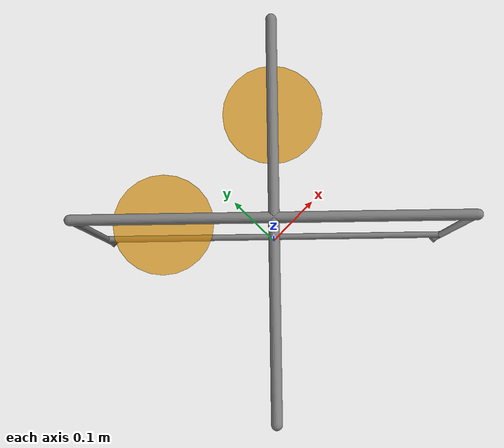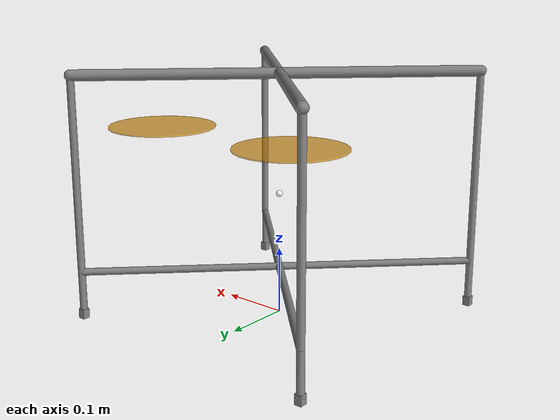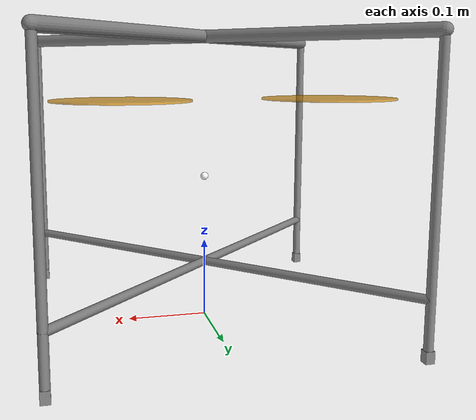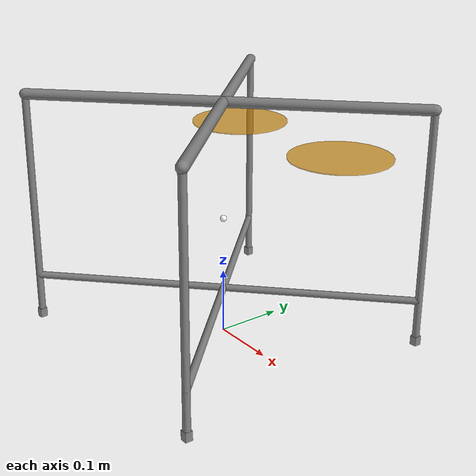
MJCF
<mujoco model="minitrone_430x430x370">
  <compiler angle="radian" coordinate="local" inertiafromgeom="auto" />
  <option gravity="0 0 -9.81" timestep="0.002" />
  <default>
    <geom friction="0.8 0.1 0.1" density="0" />
    <joint damping="0.1" stiffness="0" />
  </default>
  <worldbody>
    <body name="drone_base" pos="0.000000000 0.000000000 0.185000000">
      <freejoint name="root" />
      <!-- All physical mass concentrated at the body-frame origin. -->
      <inertial pos="0.000000000 0.000000000 0.000000000" mass="2.5" diaginertia="0.0670417 0.0670417 0.0770417" />
      <site name="drone_imu" pos="0.000000000 0.000000000 0.000000000" quat="1 0 0 0" rgba="1 1 1 1" />
      <!-- Bottom X-frame pipes -->
      <geom name="xpipe_bottome1" type="capsule" fromto="-0.206249572 -0.206249572 -0.113007850 0.206249572 0.206249572 -0.113007850" size="0.005426622" rgba="0.5 0.5 0.5 1" contype="1" conaffinity="1" group="0" mass="0" />
      <geom name="xpipe_bottome2" type="capsule" fromto="-0.206249572 0.206249572 -0.113007850 0.206249572 -0.206249572 -0.113007850" size="0.005426622" rgba="0.5 0.5 0.5 1" contype="1" conaffinity="1" group="0" mass="0" />
      <!-- Top X-frame pipes -->
      <geom name="xpipe_top1" type="capsule" fromto="-0.206249572 -0.206249572 0.176394928 0.206249572 0.206249572 0.176394928" size="0.008139933" rgba="0.5 0.5 0.5 1" contype="1" conaffinity="1" group="0" mass="0" />
      <geom name="xpipe_top2" type="capsule" fromto="-0.206249572 0.206249572 0.176394928 0.206249572 -0.206249572 0.176394928" size="0.008139933" rgba="0.5 0.5 0.5 1" contype="1" conaffinity="1" group="0" mass="0" />
      <!-- Legs and feet -->
      <geom name="leg1_shaft" type="capsule" fromto="-0.206249572 0.206249572 -0.177800785 -0.206249572 0.206249572 0.176394928" size="0.005426622" contype="1" conaffinity="1" group="0" mass="0" />
      <geom name="leg1_foot" type="box" pos="-0.206249572 0.206249572 -0.177800785" size="0.005426622 0.005426622 0.007199215" contype="1" conaffinity="1" group="0" mass="0" />
      <geom name="leg2_shaft" type="capsule" fromto="0.206249572 0.206249572 -0.177800785 0.206249572 0.206249572 0.176394928" size="0.005426622" contype="1" conaffinity="1" group="0" mass="0" />
      <geom name="leg2_foot" type="box" pos="0.206249572 0.206249572 -0.177800785" size="0.005426622 0.005426622 0.007199215" contype="1" conaffinity="1" group="0" mass="0" />
      <geom name="leg3_shaft" type="capsule" fromto="0.206249572 -0.206249572 -0.177800785 0.206249572 -0.206249572 0.176394928" size="0.005426622" contype="1" conaffinity="1" group="0" mass="0" />
      <geom name="leg3_foot" type="box" pos="0.206249572 -0.206249572 -0.177800785" size="0.005426622 0.005426622 0.007199215" contype="1" conaffinity="1" group="0" mass="0" />
      <geom name="leg4_shaft" type="capsule" fromto="-0.206249572 -0.206249572 -0.177800785 -0.206249572 -0.206249572 0.176394928" size="0.005426622" contype="1" conaffinity="1" group="0" mass="0" />
      <geom name="leg4_foot" type="box" pos="-0.206249572 -0.206249572 -0.177800785" size="0.005426622 0.005426622 0.007199215" contype="1" conaffinity="1" group="0" mass="0" />
      <body name="servo1" pos="0.117913386 0.117913386 0.131765459" quat="0.9238795 0 0 0.3826834">
        <inertial pos="0.000000000 0.000000000 0.000000000" mass="1e-9" diaginertia="1e-12 1e-12 1e-12" />
        <joint name="j_servo1" type="hinge" axis="1 0 0" pos="0.000000000 0.000000000 -0.028796860" limited="true" range="-1.57079632679 1.57079632679" armature="0.005" damping="0.02" />
        <body name="prop1_body" pos="0.000000000 0.000000000 -0.028796860">
          <geom name="prop1_col" type="cylinder" pos="0.000000000 0.000000000 0.000000000" size="0.0762 0.001" mass="1e-9" rgba="0.85 0.55 0.0 0.7" contype="0" conaffinity="0" group="1" />
          <site name="prop1_site" pos="0.000000000 0.000000000 0.000000000" size="0.005426622" type="sphere" rgba="1 1 1 0" />
        </body>
      </body>
      <body name="servo2" pos="-0.117913386 0.117913386 0.131765459" quat="0.3826834 0 0 0.9238795">
        <!-- Tiny dummy inertia for MuJoCo compile stability; not intended as physical mass. -->
        <inertial pos="0.000000000 0.000000000 0.000000000" mass="1e-9" diaginertia="1e-12 1e-12 1e-12" />
        <joint name="j_servo2" type="hinge" axis="1 0 0" pos="0.000000000 0.000000000 -0.028796860" limited="true" range="-1.57079632679 1.57079632679" armature="0.005" damping="0.02" />
        <body name="prop2_body" pos="0.000000000 0.000000000 -0.028796860">
          <geom name="prop2_col" type="cylinder" pos="0.000000000 0.000000000 0.000000000" size="0.0762 0.001" mass="1e-9" rgba="0.85 0.55 0.0 0.7" contype="0" conaffinity="0" group="2" />
          <site name="prop2_site" pos="0.000000000 0.000000000 0.000000000" size="0.005426622" type="sphere" rgba="1 1 1 0" />
        </body>
      </body>
      <body name="servo3" pos="-0.147913386 -0.147913386 0.131765459" quat="0.3826834 0 0 -0.9238795">
        <inertial pos="0.000000000 0.000000000 0.000000000" mass="1e-9" diaginertia="1e-12 1e-12 1e-12" />
        <joint name="j_servo3" type="hinge" axis="1 0 0" pos="0.000000000 0.000000000 -0.028796860" limited="true" range="-1.57079632679 1.57079632679" armature="0.005" damping="0.02" />
        <body name="prop3_body" pos="0.000000000 0.000000000 -0.028796860">
          <geom name="prop3_col" type="cylinder" pos="0.000000000 0.000000000 0.000000000" size="0.0762 0.001" mass="1e-9" rgba="0.85 0.55 0.0 0.7" contype="0" conaffinity="0" group="3" />
          <site name="prop3_site" pos="0.000000000 0.000000000 0.000000000" size="0.005426622" type="sphere" rgba="1 1 1 0" />
        </body>
      </body>
      <body name="servo4" pos="0.147913386 -0.147913386 0.131765459" quat="0.9238795 0 0 -0.3826834">
        <inertial pos="0.000000000 0.000000000 0.000000000" mass="1e-9" diaginertia="1e-12 1e-12 1e-12" />
        <joint name="j_servo4" type="hinge" axis="1 0 0" pos="0.000000000 0.000000000 -0.028796860" limited="true" range="-1.57079632679 1.57079632679" armature="0.005" damping="0.02" />
        <body name="prop4_body" pos="0.000000000 0.000000000 -0.028796860">
          <geom name="prop4_col" type="cylinder" pos="0.000000000 0.000000000 0.000000000" size="0.0762 0.001" mass="1e-9" rgba="0.85 0.55 0.0 0.7" contype="0" conaffinity="0" group="4" />
          <site name="prop4_site" pos="0.000000000 0.000000000 0.000000000" size="0.005426622" type="sphere" rgba="1 1 1 0" />
        </body>
      </body>
    </body>
  </worldbody>
  <actuator>
    <general name="BLDC1" site="prop1_site" gear="0 0 1 0 0  0.02" ctrlrange="0 15" />
    <general name="BLDC2" site="prop2_site" gear="0 0 1 0 0 -0.02" ctrlrange="0 15" />
    <general name="BLDC3" site="prop3_site" gear="0 0 1 0 0  0.02" ctrlrange="0 15" />
    <general name="BLDC4" site="prop4_site" gear="0 0 1 0 0 -0.02" ctrlrange="0 15" />
    <position name="servo1_pos" joint="j_servo1" kp="10" kv="0.2" ctrlrange="-1.57079632679 1.57079632679" />
    <position name="servo2_pos" joint="j_servo2" kp="10" kv="0.2" ctrlrange="-1.57079632679 1.57079632679" />
    <position name="servo3_pos" joint="j_servo3" kp="10" kv="0.2" ctrlrange="-1.57079632679 1.57079632679" />
    <position name="servo4_pos" joint="j_servo4" kp="10" kv="0.2" ctrlrange="-1.57079632679 1.57079632679" />
  </actuator>
  <sensor>
    <!-- IMU site: drone_imu -->
    <framequat name="body_quat" objtype="site" objname="drone_imu" />
    <gyro name="body_gyro" site="drone_imu" />
    <!-- Base body: drone_base -->
    <framepos name="base_pos" objtype="body" objname="drone_base" />
    <framelinvel name="base_linvel" objtype="body" objname="drone_base" />
    <!-- Servo sensors -->
    <jointpos name="servo1_angle" joint="j_servo1" />
    <jointpos name="servo2_angle" joint="j_servo2" />
    <jointpos name="servo3_angle" joint="j_servo3" />
    <jointpos name="servo4_angle" joint="j_servo4" />
    <jointvel name="servo1_vel" joint="j_servo1" />
    <jointvel name="servo2_vel" joint="j_servo2" />
    <jointvel name="servo3_vel" joint="j_servo3" />
    <jointvel name="servo4_vel" joint="j_servo4" />
    <!-- Propeller site states -->
    <framepos name="prop1_pos" objtype="site" objname="prop1_site" />
    <framepos name="prop2_pos" objtype="site" objname="prop2_site" />
    <framepos name="prop3_pos" objtype="site" objname="prop3_site" />
    <framepos name="prop4_pos" objtype="site" objname="prop4_site" />
    <framequat name="prop1_quat" objtype="site" objname="prop1_site" />
    <framequat name="prop2_quat" objtype="site" objname="prop2_site" />
    <framequat name="prop3_quat" objtype="site" objname="prop3_site" />
    <framequat name="prop4_quat" objtype="site" objname="prop4_site" />
    <framelinvel name="prop1_linvel" objtype="site" objname="prop1_site" />
    <framelinvel name="prop2_linvel" objtype="site" objname="prop2_site" />
    <framelinvel name="prop3_linvel" objtype="site" objname="prop3_site" />
    <framelinvel name="prop4_linvel" objtype="site" objname="prop4_site" />
    <frameangvel name="prop1_angvel" objtype="site" objname="prop1_site" />
    <frameangvel name="prop2_angvel" objtype="site" objname="prop2_site" />
    <frameangvel name="prop3_angvel" objtype="site" objname="prop3_site" />
    <frameangvel name="prop4_angvel" objtype="site" objname="prop4_site" />
  </sensor>
</mujoco>
